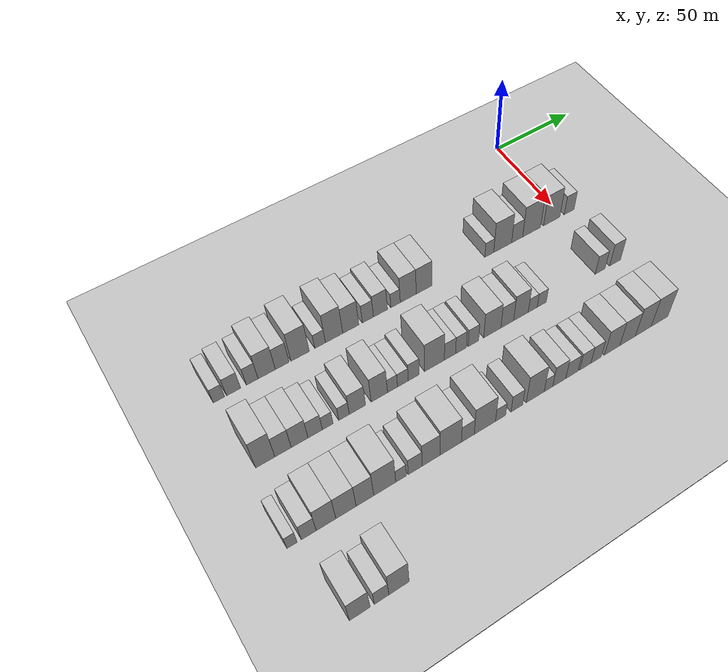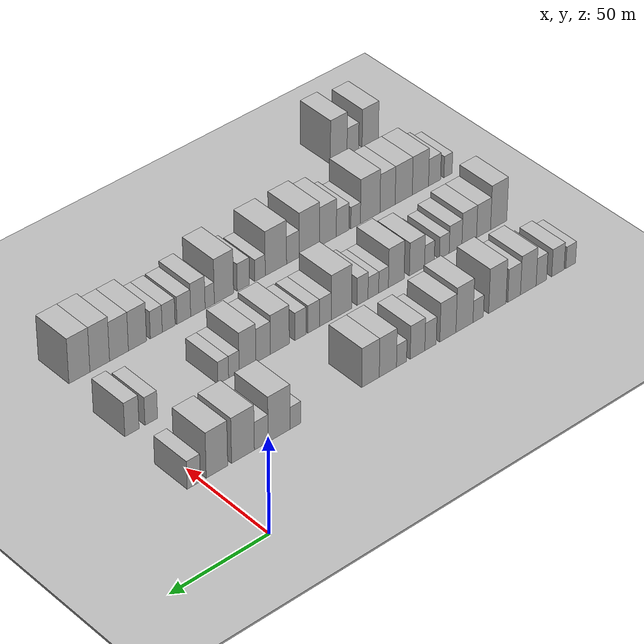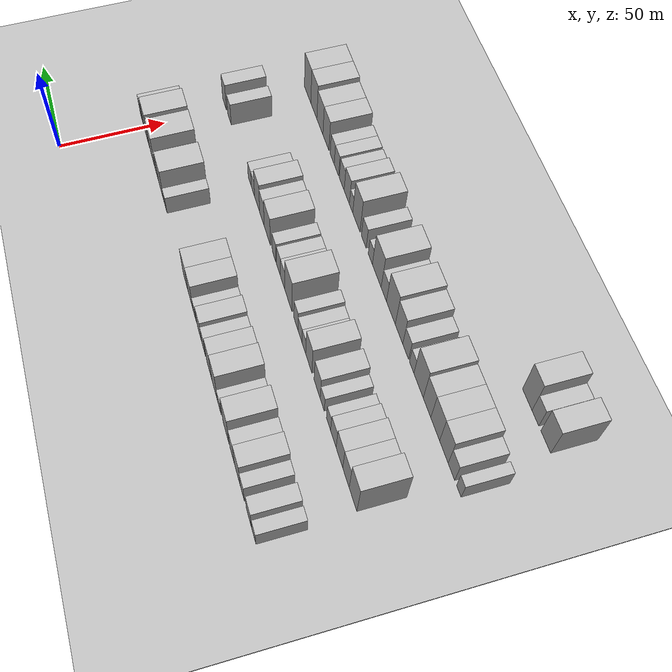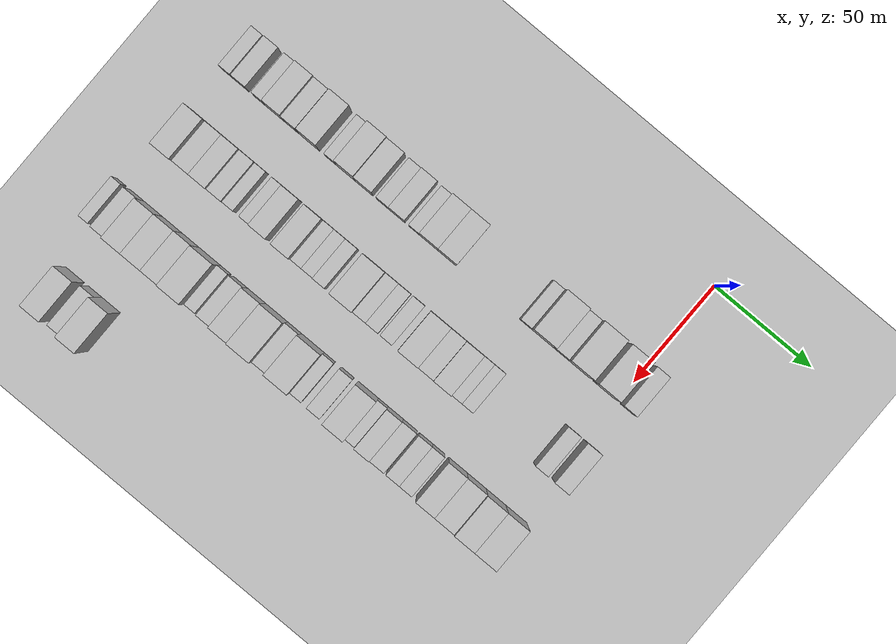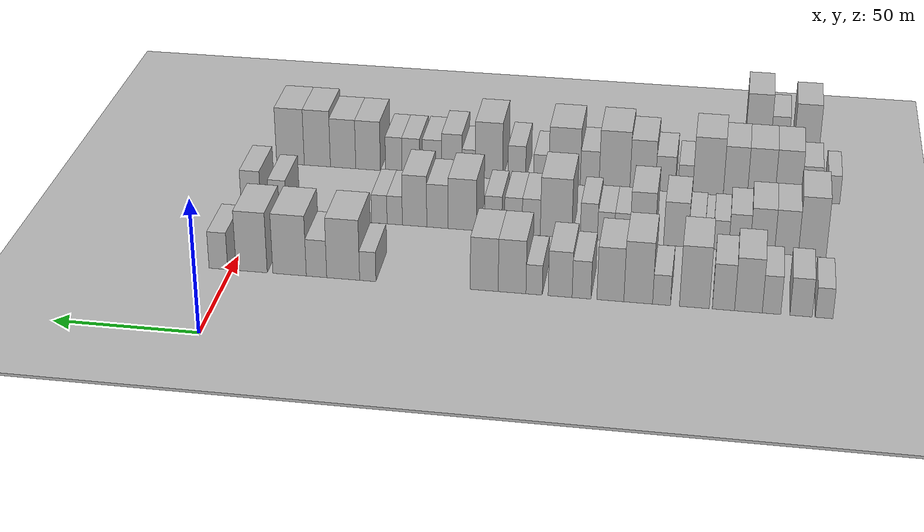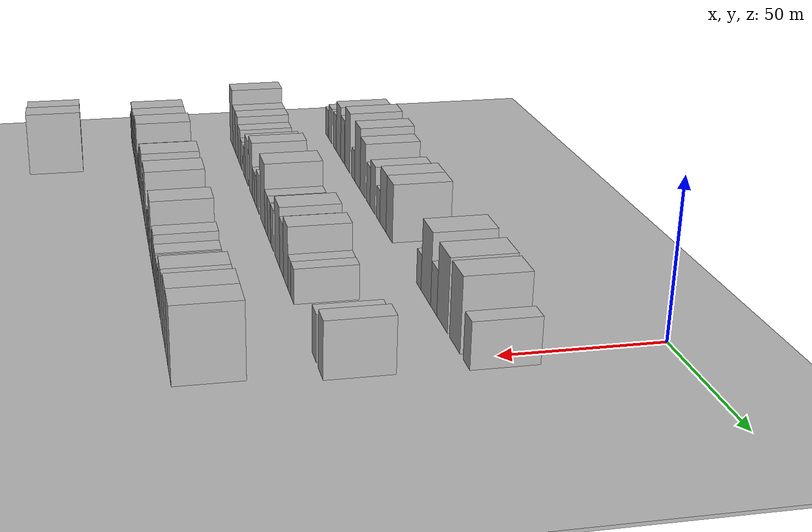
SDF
<sdf version="1.6">
 <world name="default">
  <include><name>ground_plane_1</name><uri>model://HANNAS_ground_plane</uri></include>
  <include>
   <name>ground_plane_2</name>
   <uri>model://HANNAS_ground_plane</uri>
   <pose>100 0 0  0 0 0</pose>
  </include>
  <model name="building_47">
   <static>1</static>
   <pose>50.0000 -202.3374 0 0.000000 0.000000 0.000000</pose>
   <link name="link">
    <pose>0 0 6.00 0 0 0</pose>
    <collision name="collision"><geometry><box><size>20.0000 5.7810 12.0000</size></box></geometry></collision>
    <visual name="visual">
     <cast_shadows>0</cast_shadows>
     <geometry><box><size>20.0000 5.7810 12.0000</size></box></geometry>
     <material>
      <script>
       <uri>model://HANNAS_wall/materials/scripts</uri>
       <uri>model://HANNAS_wall/materials/textures</uri>
       <name>vrc/HANNAS_wall</name>
      </script>
     </material>
    </visual>
   </link>
  </model>
  <model name="building_48">
   <static>1</static>
   <pose>50.0000 -194.7941 0 0.000000 0.000000 0.000000</pose>
   <link name="link">
    <pose>0 0 7.50 0 0 0</pose>
    <collision name="collision"><geometry><box><size>20.0000 7.3055 15.0000</size></box></geometry></collision>
    <visual name="visual">
     <cast_shadows>0</cast_shadows>
     <geometry><box><size>20.0000 7.3055 15.0000</size></box></geometry>
     <material>
      <script>
       <uri>model://HANNAS_wall/materials/scripts</uri>
       <uri>model://HANNAS_wall/materials/textures</uri>
       <name>vrc/HANNAS_wall</name>
      </script>
     </material>
    </visual>
   </link>
  </model>
  <model name="building_49">
   <static>1</static>
   <pose>50.0000 -185.0760 0 0.000000 0.000000 0.000000</pose>
   <link name="link">
    <pose>0 0 7.50 0 0 0</pose>
    <collision name="collision"><geometry><box><size>20.0000 6.1306 15.0000</size></box></geometry></collision>
    <visual name="visual">
     <cast_shadows>0</cast_shadows>
     <geometry><box><size>20.0000 6.1306 15.0000</size></box></geometry>
     <material>
      <script>
       <uri>model://HANNAS_wall/materials/scripts</uri>
       <uri>model://HANNAS_wall/materials/textures</uri>
       <name>vrc/HANNAS_wall</name>
      </script>
     </material>
    </visual>
   </link>
  </model>
  <model name="building_50">
   <static>1</static>
   <pose>50.0000 -177.4437 0 0.000000 0.000000 0.000000</pose>
   <link name="link">
    <pose>0 0 10.50 0 0 0</pose>
    <collision name="collision"><geometry><box><size>20.0000 9.1340 21.0000</size></box></geometry></collision>
    <visual name="visual">
     <cast_shadows>0</cast_shadows>
     <geometry><box><size>20.0000 9.1340 21.0000</size></box></geometry>
     <material>
      <script>
       <uri>model://HANNAS_wall/materials/scripts</uri>
       <uri>model://HANNAS_wall/materials/textures</uri>
       <name>vrc/HANNAS_wall</name>
      </script>
     </material>
    </visual>
   </link>
  </model>
  <model name="building_51">
   <static>1</static>
   <pose>50.0000 -169.1951 0 0.000000 0.000000 0.000000</pose>
   <link name="link">
    <pose>0 0 9.00 0 0 0</pose>
    <collision name="collision"><geometry><box><size>20.0000 7.3631 18.0000</size></box></geometry></collision>
    <visual name="visual">
     <cast_shadows>0</cast_shadows>
     <geometry><box><size>20.0000 7.3631 18.0000</size></box></geometry>
     <material>
      <script>
       <uri>model://HANNAS_wall/materials/scripts</uri>
       <uri>model://HANNAS_wall/materials/textures</uri>
       <name>vrc/HANNAS_wall</name>
      </script>
     </material>
    </visual>
   </link>
  </model>
  <model name="building_52">
   <static>1</static>
   <pose>50.0000 -159.5304 0 0.000000 0.000000 0.000000</pose>
   <link name="link">
    <pose>0 0 12.00 0 0 0</pose>
    <collision name="collision"><geometry><box><size>20.0000 9.9664 24.0000</size></box></geometry></collision>
    <visual name="visual">
     <cast_shadows>0</cast_shadows>
     <geometry><box><size>20.0000 9.9664 24.0000</size></box></geometry>
     <material>
      <script>
       <uri>model://HANNAS_wall/materials/scripts</uri>
       <uri>model://HANNAS_wall/materials/textures</uri>
       <name>vrc/HANNAS_wall</name>
      </script>
     </material>
    </visual>
   </link>
  </model>
  <model name="building_53">
   <static>1</static>
   <pose>50.0000 -148.5701 0 0.000000 0.000000 0.000000</pose>
   <link name="link">
    <pose>0 0 6.00 0 0 0</pose>
    <collision name="collision"><geometry><box><size>20.0000 5.9542 12.0000</size></box></geometry></collision>
    <visual name="visual">
     <cast_shadows>0</cast_shadows>
     <geometry><box><size>20.0000 5.9542 12.0000</size></box></geometry>
     <material>
      <script>
       <uri>model://HANNAS_wall/materials/scripts</uri>
       <uri>model://HANNAS_wall/materials/textures</uri>
       <name>vrc/HANNAS_wall</name>
      </script>
     </material>
    </visual>
   </link>
  </model>
  <model name="building_54">
   <static>1</static>
   <pose>50.0000 -140.7687 0 0.000000 0.000000 0.000000</pose>
   <link name="link">
    <pose>0 0 12.00 0 0 0</pose>
    <collision name="collision"><geometry><box><size>20.0000 9.6486 24.0000</size></box></geometry></collision>
    <visual name="visual">
     <cast_shadows>0</cast_shadows>
     <geometry><box><size>20.0000 9.6486 24.0000</size></box></geometry>
     <material>
      <script>
       <uri>model://HANNAS_wall/materials/scripts</uri>
       <uri>model://HANNAS_wall/materials/textures</uri>
       <name>vrc/HANNAS_wall</name>
      </script>
     </material>
    </visual>
   </link>
  </model>
  <model name="building_55">
   <static>1</static>
   <pose>50.0000 -131.4038 0 0.000000 0.000000 0.000000</pose>
   <link name="link">
    <pose>0 0 10.50 0 0 0</pose>
    <collision name="collision"><geometry><box><size>20.0000 9.0811 21.0000</size></box></geometry></collision>
    <visual name="visual">
     <cast_shadows>0</cast_shadows>
     <geometry><box><size>20.0000 9.0811 21.0000</size></box></geometry>
     <material>
      <script>
       <uri>model://HANNAS_wall/materials/scripts</uri>
       <uri>model://HANNAS_wall/materials/textures</uri>
       <name>vrc/HANNAS_wall</name>
      </script>
     </material>
    </visual>
   </link>
  </model>
  <model name="building_56">
   <static>1</static>
   <pose>50.0000 -121.6755 0 0.000000 0.000000 0.000000</pose>
   <link name="link">
    <pose>0 0 7.50 0 0 0</pose>
    <collision name="collision"><geometry><box><size>20.0000 6.3754 15.0000</size></box></geometry></collision>
    <visual name="visual">
     <cast_shadows>0</cast_shadows>
     <geometry><box><size>20.0000 6.3754 15.0000</size></box></geometry>
     <material>
      <script>
       <uri>model://HANNAS_wall/materials/scripts</uri>
       <uri>model://HANNAS_wall/materials/textures</uri>
       <name>vrc/HANNAS_wall</name>
      </script>
     </material>
    </visual>
   </link>
  </model>
  <model name="building_57">
   <static>1</static>
   <pose>50.0000 -114.4243 0 0.000000 0.000000 0.000000</pose>
   <link name="link">
    <pose>0 0 9.00 0 0 0</pose>
    <collision name="collision"><geometry><box><size>20.0000 8.1271 18.0000</size></box></geometry></collision>
    <visual name="visual">
     <cast_shadows>0</cast_shadows>
     <geometry><box><size>20.0000 8.1271 18.0000</size></box></geometry>
     <material>
      <script>
       <uri>model://HANNAS_wall/materials/scripts</uri>
       <uri>model://HANNAS_wall/materials/textures</uri>
       <name>vrc/HANNAS_wall</name>
      </script>
     </material>
    </visual>
   </link>
  </model>
  <model name="building_58">
   <static>1</static>
   <pose>50.0000 -105.5826 0 0.000000 0.000000 0.000000</pose>
   <link name="link">
    <pose>0 0 6.00 0 0 0</pose>
    <collision name="collision"><geometry><box><size>20.0000 5.5562 12.0000</size></box></geometry></collision>
    <visual name="visual">
     <cast_shadows>0</cast_shadows>
     <geometry><box><size>20.0000 5.5562 12.0000</size></box></geometry>
     <material>
      <script>
       <uri>model://HANNAS_wall/materials/scripts</uri>
       <uri>model://HANNAS_wall/materials/textures</uri>
       <name>vrc/HANNAS_wall</name>
      </script>
     </material>
    </visual>
   </link>
  </model>
  <model name="building_59">
   <static>1</static>
   <pose>50.0000 -98.0657 0 0.000000 0.000000 0.000000</pose>
   <link name="link">
    <pose>0 0 10.50 0 0 0</pose>
    <collision name="collision"><geometry><box><size>20.0000 9.4777 21.0000</size></box></geometry></collision>
    <visual name="visual">
     <cast_shadows>0</cast_shadows>
     <geometry><box><size>20.0000 9.4777 21.0000</size></box></geometry>
     <material>
      <script>
       <uri>model://HANNAS_wall/materials/scripts</uri>
       <uri>model://HANNAS_wall/materials/textures</uri>
       <name>vrc/HANNAS_wall</name>
      </script>
     </material>
    </visual>
   </link>
  </model>
  <model name="building_60">
   <static>1</static>
   <pose>50.0000 -88.5477 0 0.000000 0.000000 0.000000</pose>
   <link name="link">
    <pose>0 0 10.50 0 0 0</pose>
    <collision name="collision"><geometry><box><size>20.0000 9.5583 21.0000</size></box></geometry></collision>
    <visual name="visual">
     <cast_shadows>0</cast_shadows>
     <geometry><box><size>20.0000 9.5583 21.0000</size></box></geometry>
     <material>
      <script>
       <uri>model://HANNAS_wall/materials/scripts</uri>
       <uri>model://HANNAS_wall/materials/textures</uri>
       <name>vrc/HANNAS_wall</name>
      </script>
     </material>
    </visual>
   </link>
  </model>
  <model name="building_61">
   <static>1</static>
   <pose>50.0000 -48.2554 0 0.000000 0.000000 0.000000</pose>
   <link name="link">
    <pose>0 0 6.00 0 0 0</pose>
    <collision name="collision"><geometry><box><size>20.0000 5.6754 12.0000</size></box></geometry></collision>
    <visual name="visual">
     <cast_shadows>0</cast_shadows>
     <geometry><box><size>20.0000 5.6754 12.0000</size></box></geometry>
     <material>
      <script>
       <uri>model://HANNAS_wall/materials/scripts</uri>
       <uri>model://HANNAS_wall/materials/textures</uri>
       <name>vrc/HANNAS_wall</name>
      </script>
     </material>
    </visual>
   </link>
  </model>
  <model name="building_62">
   <static>1</static>
   <pose>50.0000 -39.6588 0 0.000000 0.000000 0.000000</pose>
   <link name="link">
    <pose>0 0 12.00 0 0 0</pose>
    <collision name="collision"><geometry><box><size>20.0000 11.5177 24.0000</size></box></geometry></collision>
    <visual name="visual">
     <cast_shadows>0</cast_shadows>
     <geometry><box><size>20.0000 11.5177 24.0000</size></box></geometry>
     <material>
      <script>
       <uri>model://HANNAS_wall/materials/scripts</uri>
       <uri>model://HANNAS_wall/materials/textures</uri>
       <name>vrc/HANNAS_wall</name>
      </script>
     </material>
    </visual>
   </link>
  </model>
  <model name="building_63">
   <static>1</static>
   <pose>50.0000 -30.3144 0 0.000000 0.000000 0.000000</pose>
   <link name="link">
    <pose>0 0 7.50 0 0 0</pose>
    <collision name="collision"><geometry><box><size>20.0000 7.1711 15.0000</size></box></geometry></collision>
    <visual name="visual">
     <cast_shadows>0</cast_shadows>
     <geometry><box><size>20.0000 7.1711 15.0000</size></box></geometry>
     <material>
      <script>
       <uri>model://HANNAS_wall/materials/scripts</uri>
       <uri>model://HANNAS_wall/materials/textures</uri>
       <name>vrc/HANNAS_wall</name>
      </script>
     </material>
    </visual>
   </link>
  </model>
  <model name="building_64">
   <static>1</static>
   <pose>50.0000 -20.8321 0 0.000000 0.000000 0.000000</pose>
   <link name="link">
    <pose>0 0 12.00 0 0 0</pose>
    <collision name="collision"><geometry><box><size>20.0000 11.7934 24.0000</size></box></geometry></collision>
    <visual name="visual">
     <cast_shadows>0</cast_shadows>
     <geometry><box><size>20.0000 11.7934 24.0000</size></box></geometry>
     <material>
      <script>
       <uri>model://HANNAS_wall/materials/scripts</uri>
       <uri>model://HANNAS_wall/materials/textures</uri>
       <name>vrc/HANNAS_wall</name>
      </script>
     </material>
    </visual>
   </link>
  </model>
  <model name="building_65">
   <static>1</static>
   <pose>50.0000 -7.4332 0 0.000000 0.000000 0.000000</pose>
   <link name="link">
    <pose>0 0 12.00 0 0 0</pose>
    <collision name="collision"><geometry><box><size>20.0000 11.0044 24.0000</size></box></geometry></collision>
    <visual name="visual">
     <cast_shadows>0</cast_shadows>
     <geometry><box><size>20.0000 11.0044 24.0000</size></box></geometry>
     <material>
      <script>
       <uri>model://HANNAS_wall/materials/scripts</uri>
       <uri>model://HANNAS_wall/materials/textures</uri>
       <name>vrc/HANNAS_wall</name>
      </script>
     </material>
    </visual>
   </link>
  </model>
  <model name="building_66">
   <static>1</static>
   <pose>50.0000 4.3997 0 0.000000 0.000000 0.000000</pose>
   <link name="link">
    <pose>0 0 7.50 0 0 0</pose>
    <collision name="collision"><geometry><box><size>20.0000 6.6614 15.0000</size></box></geometry></collision>
    <visual name="visual">
     <cast_shadows>0</cast_shadows>
     <geometry><box><size>20.0000 6.6614 15.0000</size></box></geometry>
     <material>
      <script>
       <uri>model://HANNAS_wall/materials/scripts</uri>
       <uri>model://HANNAS_wall/materials/textures</uri>
       <name>vrc/HANNAS_wall</name>
      </script>
     </material>
    </visual>
   </link>
  </model>
  <model name="building_185">
   <static>1</static>
   <pose>90.0000 -198.8361 0 0.000000 0.000000 0.000000</pose>
   <link name="link">
    <pose>0 0 12.00 0 0 0</pose>
    <collision name="collision"><geometry><box><size>20.0000 9.6117 24.0000</size></box></geometry></collision>
    <visual name="visual">
     <cast_shadows>0</cast_shadows>
     <geometry><box><size>20.0000 9.6117 24.0000</size></box></geometry>
     <material>
      <script>
       <uri>model://HANNAS_wall/materials/scripts</uri>
       <uri>model://HANNAS_wall/materials/textures</uri>
       <name>vrc/HANNAS_wall</name>
      </script>
     </material>
    </visual>
   </link>
  </model>
  <model name="building_186">
   <static>1</static>
   <pose>90.0000 -189.9027 0 0.000000 0.000000 0.000000</pose>
   <link name="link">
    <pose>0 0 9.00 0 0 0</pose>
    <collision name="collision"><geometry><box><size>20.0000 8.2553 18.0000</size></box></geometry></collision>
    <visual name="visual">
     <cast_shadows>0</cast_shadows>
     <geometry><box><size>20.0000 8.2553 18.0000</size></box></geometry>
     <material>
      <script>
       <uri>model://HANNAS_wall/materials/scripts</uri>
       <uri>model://HANNAS_wall/materials/textures</uri>
       <name>vrc/HANNAS_wall</name>
      </script>
     </material>
    </visual>
   </link>
  </model>
  <model name="building_187">
   <static>1</static>
   <pose>90.0000 -181.4926 0 0.000000 0.000000 0.000000</pose>
   <link name="link">
    <pose>0 0 9.00 0 0 0</pose>
    <collision name="collision"><geometry><box><size>20.0000 8.5650 18.0000</size></box></geometry></collision>
    <visual name="visual">
     <cast_shadows>0</cast_shadows>
     <geometry><box><size>20.0000 8.5650 18.0000</size></box></geometry>
     <material>
      <script>
       <uri>model://HANNAS_wall/materials/scripts</uri>
       <uri>model://HANNAS_wall/materials/textures</uri>
       <name>vrc/HANNAS_wall</name>
      </script>
     </material>
    </visual>
   </link>
  </model>
  <model name="building_188">
   <static>1</static>
   <pose>90.0000 -173.5061 0 0.000000 0.000000 0.000000</pose>
   <link name="link">
    <pose>0 0 7.50 0 0 0</pose>
    <collision name="collision"><geometry><box><size>20.0000 7.4079 15.0000</size></box></geometry></collision>
    <visual name="visual">
     <cast_shadows>0</cast_shadows>
     <geometry><box><size>20.0000 7.4079 15.0000</size></box></geometry>
     <material>
      <script>
       <uri>model://HANNAS_wall/materials/scripts</uri>
       <uri>model://HANNAS_wall/materials/textures</uri>
       <name>vrc/HANNAS_wall</name>
      </script>
     </material>
    </visual>
   </link>
  </model>
  <model name="building_189">
   <static>1</static>
   <pose>90.0000 -166.9955 0 0.000000 0.000000 0.000000</pose>
   <link name="link">
    <pose>0 0 6.00 0 0 0</pose>
    <collision name="collision"><geometry><box><size>20.0000 5.6134 12.0000</size></box></geometry></collision>
    <visual name="visual">
     <cast_shadows>0</cast_shadows>
     <geometry><box><size>20.0000 5.6134 12.0000</size></box></geometry>
     <material>
      <script>
       <uri>model://HANNAS_wall/materials/scripts</uri>
       <uri>model://HANNAS_wall/materials/textures</uri>
       <name>vrc/HANNAS_wall</name>
      </script>
     </material>
    </visual>
   </link>
  </model>
  <model name="building_190">
   <static>1</static>
   <pose>90.0000 -158.3928 0 0.000000 0.000000 0.000000</pose>
   <link name="link">
    <pose>0 0 6.00 0 0 0</pose>
    <collision name="collision"><geometry><box><size>20.0000 5.5920 12.0000</size></box></geometry></collision>
    <visual name="visual">
     <cast_shadows>0</cast_shadows>
     <geometry><box><size>20.0000 5.5920 12.0000</size></box></geometry>
     <material>
      <script>
       <uri>model://HANNAS_wall/materials/scripts</uri>
       <uri>model://HANNAS_wall/materials/textures</uri>
       <name>vrc/HANNAS_wall</name>
      </script>
     </material>
    </visual>
   </link>
  </model>
  <model name="building_191">
   <static>1</static>
   <pose>90.0000 -151.2549 0 0.000000 0.000000 0.000000</pose>
   <link name="link">
    <pose>0 0 9.00 0 0 0</pose>
    <collision name="collision"><geometry><box><size>20.0000 8.6836 18.0000</size></box></geometry></collision>
    <visual name="visual">
     <cast_shadows>0</cast_shadows>
     <geometry><box><size>20.0000 8.6836 18.0000</size></box></geometry>
     <material>
      <script>
       <uri>model://HANNAS_wall/materials/scripts</uri>
       <uri>model://HANNAS_wall/materials/textures</uri>
       <name>vrc/HANNAS_wall</name>
      </script>
     </material>
    </visual>
   </link>
  </model>
  <model name="building_192">
   <static>1</static>
   <pose>90.0000 -139.4484 0 0.000000 0.000000 0.000000</pose>
   <link name="link">
    <pose>0 0 10.50 0 0 0</pose>
    <collision name="collision"><geometry><box><size>20.0000 8.9294 21.0000</size></box></geometry></collision>
    <visual name="visual">
     <cast_shadows>0</cast_shadows>
     <geometry><box><size>20.0000 8.9294 21.0000</size></box></geometry>
     <material>
      <script>
       <uri>model://HANNAS_wall/materials/scripts</uri>
       <uri>model://HANNAS_wall/materials/textures</uri>
       <name>vrc/HANNAS_wall</name>
      </script>
     </material>
    </visual>
   </link>
  </model>
  <model name="building_193">
   <static>1</static>
   <pose>90.0000 -132.2316 0 0.000000 0.000000 0.000000</pose>
   <link name="link">
    <pose>0 0 6.00 0 0 0</pose>
    <collision name="collision"><geometry><box><size>20.0000 5.5043 12.0000</size></box></geometry></collision>
    <visual name="visual">
     <cast_shadows>0</cast_shadows>
     <geometry><box><size>20.0000 5.5043 12.0000</size></box></geometry>
     <material>
      <script>
       <uri>model://HANNAS_wall/materials/scripts</uri>
       <uri>model://HANNAS_wall/materials/textures</uri>
       <name>vrc/HANNAS_wall</name>
      </script>
     </material>
    </visual>
   </link>
  </model>
  <model name="building_194">
   <static>1</static>
   <pose>90.0000 -126.4811 0 0.000000 0.000000 0.000000</pose>
   <link name="link">
    <pose>0 0 6.00 0 0 0</pose>
    <collision name="collision"><geometry><box><size>20.0000 5.9968 12.0000</size></box></geometry></collision>
    <visual name="visual">
     <cast_shadows>0</cast_shadows>
     <geometry><box><size>20.0000 5.9968 12.0000</size></box></geometry>
     <material>
      <script>
       <uri>model://HANNAS_wall/materials/scripts</uri>
       <uri>model://HANNAS_wall/materials/textures</uri>
       <name>vrc/HANNAS_wall</name>
      </script>
     </material>
    </visual>
   </link>
  </model>
  <model name="building_195">
   <static>1</static>
   <pose>90.0000 -120.4056 0 0.000000 0.000000 0.000000</pose>
   <link name="link">
    <pose>0 0 7.50 0 0 0</pose>
    <collision name="collision"><geometry><box><size>20.0000 6.1540 15.0000</size></box></geometry></collision>
    <visual name="visual">
     <cast_shadows>0</cast_shadows>
     <geometry><box><size>20.0000 6.1540 15.0000</size></box></geometry>
     <material>
      <script>
       <uri>model://HANNAS_wall/materials/scripts</uri>
       <uri>model://HANNAS_wall/materials/textures</uri>
       <name>vrc/HANNAS_wall</name>
      </script>
     </material>
    </visual>
   </link>
  </model>
  <model name="building_196">
   <static>1</static>
   <pose>90.0000 -108.6854 0 0.000000 0.000000 0.000000</pose>
   <link name="link">
    <pose>0 0 12.00 0 0 0</pose>
    <collision name="collision"><geometry><box><size>20.0000 11.2864 24.0000</size></box></geometry></collision>
    <visual name="visual">
     <cast_shadows>0</cast_shadows>
     <geometry><box><size>20.0000 11.2864 24.0000</size></box></geometry>
     <material>
      <script>
       <uri>model://HANNAS_wall/materials/scripts</uri>
       <uri>model://HANNAS_wall/materials/textures</uri>
       <name>vrc/HANNAS_wall</name>
      </script>
     </material>
    </visual>
   </link>
  </model>
  <model name="building_197">
   <static>1</static>
   <pose>90.0000 -99.7617 0 0.000000 0.000000 0.000000</pose>
   <link name="link">
    <pose>0 0 7.50 0 0 0</pose>
    <collision name="collision"><geometry><box><size>20.0000 6.5609 15.0000</size></box></geometry></collision>
    <visual name="visual">
     <cast_shadows>0</cast_shadows>
     <geometry><box><size>20.0000 6.5609 15.0000</size></box></geometry>
     <material>
      <script>
       <uri>model://HANNAS_wall/materials/scripts</uri>
       <uri>model://HANNAS_wall/materials/textures</uri>
       <name>vrc/HANNAS_wall</name>
      </script>
     </material>
    </visual>
   </link>
  </model>
  <model name="building_198">
   <static>1</static>
   <pose>90.0000 -93.3326 0 0.000000 0.000000 0.000000</pose>
   <link name="link">
    <pose>0 0 7.50 0 0 0</pose>
    <collision name="collision"><geometry><box><size>20.0000 6.2973 15.0000</size></box></geometry></collision>
    <visual name="visual">
     <cast_shadows>0</cast_shadows>
     <geometry><box><size>20.0000 6.2973 15.0000</size></box></geometry>
     <material>
      <script>
       <uri>model://HANNAS_wall/materials/scripts</uri>
       <uri>model://HANNAS_wall/materials/textures</uri>
       <name>vrc/HANNAS_wall</name>
      </script>
     </material>
    </visual>
   </link>
  </model>
  <model name="building_199">
   <static>1</static>
   <pose>90.0000 -86.1024 0 0.000000 0.000000 0.000000</pose>
   <link name="link">
    <pose>0 0 7.50 0 0 0</pose>
    <collision name="collision"><geometry><box><size>20.0000 6.1631 15.0000</size></box></geometry></collision>
    <visual name="visual">
     <cast_shadows>0</cast_shadows>
     <geometry><box><size>20.0000 6.1631 15.0000</size></box></geometry>
     <material>
      <script>
       <uri>model://HANNAS_wall/materials/scripts</uri>
       <uri>model://HANNAS_wall/materials/textures</uri>
       <name>vrc/HANNAS_wall</name>
      </script>
     </material>
    </visual>
   </link>
  </model>
  <model name="building_200">
   <static>1</static>
   <pose>90.0000 -74.8741 0 0.000000 0.000000 0.000000</pose>
   <link name="link">
    <pose>0 0 10.50 0 0 0</pose>
    <collision name="collision"><geometry><box><size>20.0000 10.2935 21.0000</size></box></geometry></collision>
    <visual name="visual">
     <cast_shadows>0</cast_shadows>
     <geometry><box><size>20.0000 10.2935 21.0000</size></box></geometry>
     <material>
      <script>
       <uri>model://HANNAS_wall/materials/scripts</uri>
       <uri>model://HANNAS_wall/materials/textures</uri>
       <name>vrc/HANNAS_wall</name>
      </script>
     </material>
    </visual>
   </link>
  </model>
  <model name="building_201">
   <static>1</static>
   <pose>90.0000 -65.8512 0 0.000000 0.000000 0.000000</pose>
   <link name="link">
    <pose>0 0 9.00 0 0 0</pose>
    <collision name="collision"><geometry><box><size>20.0000 7.7523 18.0000</size></box></geometry></collision>
    <visual name="visual">
     <cast_shadows>0</cast_shadows>
     <geometry><box><size>20.0000 7.7523 18.0000</size></box></geometry>
     <material>
      <script>
       <uri>model://HANNAS_wall/materials/scripts</uri>
       <uri>model://HANNAS_wall/materials/textures</uri>
       <name>vrc/HANNAS_wall</name>
      </script>
     </material>
    </visual>
   </link>
  </model>
  <model name="building_202">
   <static>1</static>
   <pose>90.0000 -57.5063 0 0.000000 0.000000 0.000000</pose>
   <link name="link">
    <pose>0 0 10.50 0 0 0</pose>
    <collision name="collision"><geometry><box><size>20.0000 8.9376 21.0000</size></box></geometry></collision>
    <visual name="visual">
     <cast_shadows>0</cast_shadows>
     <geometry><box><size>20.0000 8.9376 21.0000</size></box></geometry>
     <material>
      <script>
       <uri>model://HANNAS_wall/materials/scripts</uri>
       <uri>model://HANNAS_wall/materials/textures</uri>
       <name>vrc/HANNAS_wall</name>
      </script>
     </material>
    </visual>
   </link>
  </model>
  <model name="building_203">
   <static>1</static>
   <pose>90.0000 -50.2398 0 0.000000 0.000000 0.000000</pose>
   <link name="link">
    <pose>0 0 6.00 0 0 0</pose>
    <collision name="collision"><geometry><box><size>20.0000 5.5954 12.0000</size></box></geometry></collision>
    <visual name="visual">
     <cast_shadows>0</cast_shadows>
     <geometry><box><size>20.0000 5.5954 12.0000</size></box></geometry>
     <material>
      <script>
       <uri>model://HANNAS_wall/materials/scripts</uri>
       <uri>model://HANNAS_wall/materials/textures</uri>
       <name>vrc/HANNAS_wall</name>
      </script>
     </material>
    </visual>
   </link>
  </model>
  <model name="building_204">
   <static>1</static>
   <pose>90.0000 -44.6029 0 0.000000 0.000000 0.000000</pose>
   <link name="link">
    <pose>0 0 6.00 0 0 0</pose>
    <collision name="collision"><geometry><box><size>20.0000 5.6784 12.0000</size></box></geometry></collision>
    <visual name="visual">
     <cast_shadows>0</cast_shadows>
     <geometry><box><size>20.0000 5.6784 12.0000</size></box></geometry>
     <material>
      <script>
       <uri>model://HANNAS_wall/materials/scripts</uri>
       <uri>model://HANNAS_wall/materials/textures</uri>
       <name>vrc/HANNAS_wall</name>
      </script>
     </material>
    </visual>
   </link>
  </model>
  <model name="building_205">
   <static>1</static>
   <pose>90.0000 -7.0333 0 0.000000 0.000000 0.000000</pose>
   <link name="link">
    <pose>0 0 7.50 0 0 0</pose>
    <collision name="collision"><geometry><box><size>20.0000 6.4869 15.0000</size></box></geometry></collision>
    <visual name="visual">
     <cast_shadows>0</cast_shadows>
     <geometry><box><size>20.0000 6.4869 15.0000</size></box></geometry>
     <material>
      <script>
       <uri>model://HANNAS_wall/materials/scripts</uri>
       <uri>model://HANNAS_wall/materials/textures</uri>
       <name>vrc/HANNAS_wall</name>
      </script>
     </material>
    </visual>
   </link>
  </model>
  <model name="building_206">
   <static>1</static>
   <pose>90.0000 2.8644 0 0.000000 0.000000 0.000000</pose>
   <link name="link">
    <pose>0 0 9.00 0 0 0</pose>
    <collision name="collision"><geometry><box><size>20.0000 7.3085 18.0000</size></box></geometry></collision>
    <visual name="visual">
     <cast_shadows>0</cast_shadows>
     <geometry><box><size>20.0000 7.3085 18.0000</size></box></geometry>
     <material>
      <script>
       <uri>model://HANNAS_wall/materials/scripts</uri>
       <uri>model://HANNAS_wall/materials/textures</uri>
       <name>vrc/HANNAS_wall</name>
      </script>
     </material>
    </visual>
   </link>
  </model>
  <model name="building_321">
   <static>1</static>
   <pose>130.0000 -206.8223 0 0.000000 0.000000 0.000000</pose>
   <link name="link">
    <pose>0 0 6.00 0 0 0</pose>
    <collision name="collision"><geometry><box><size>20.0000 4.8735 12.0000</size></box></geometry></collision>
    <visual name="visual">
     <cast_shadows>0</cast_shadows>
     <geometry><box><size>20.0000 4.8735 12.0000</size></box></geometry>
     <material>
      <script>
       <uri>model://HANNAS_wall/materials/scripts</uri>
       <uri>model://HANNAS_wall/materials/textures</uri>
       <name>vrc/HANNAS_wall</name>
      </script>
     </material>
    </visual>
   </link>
  </model>
  <model name="building_322">
   <static>1</static>
   <pose>130.0000 -198.7988 0 0.000000 0.000000 0.000000</pose>
   <link name="link">
    <pose>0 0 7.50 0 0 0</pose>
    <collision name="collision"><geometry><box><size>20.0000 7.1736 15.0000</size></box></geometry></collision>
    <visual name="visual">
     <cast_shadows>0</cast_shadows>
     <geometry><box><size>20.0000 7.1736 15.0000</size></box></geometry>
     <material>
      <script>
       <uri>model://HANNAS_wall/materials/scripts</uri>
       <uri>model://HANNAS_wall/materials/textures</uri>
       <name>vrc/HANNAS_wall</name>
      </script>
     </material>
    </visual>
   </link>
  </model>
  <model name="building_323">
   <static>1</static>
   <pose>130.0000 -190.4127 0 0.000000 0.000000 0.000000</pose>
   <link name="link">
    <pose>0 0 10.50 0 0 0</pose>
    <collision name="collision"><geometry><box><size>20.0000 9.5984 21.0000</size></box></geometry></collision>
    <visual name="visual">
     <cast_shadows>0</cast_shadows>
     <geometry><box><size>20.0000 9.5984 21.0000</size></box></geometry>
     <material>
      <script>
       <uri>model://HANNAS_wall/materials/scripts</uri>
       <uri>model://HANNAS_wall/materials/textures</uri>
       <name>vrc/HANNAS_wall</name>
      </script>
     </material>
    </visual>
   </link>
  </model>
  <model name="building_324">
   <static>1</static>
   <pose>130.0000 -180.5781 0 0.000000 0.000000 0.000000</pose>
   <link name="link">
    <pose>0 0 10.50 0 0 0</pose>
    <collision name="collision"><geometry><box><size>20.0000 10.0708 21.0000</size></box></geometry></collision>
    <visual name="visual">
     <cast_shadows>0</cast_shadows>
     <geometry><box><size>20.0000 10.0708 21.0000</size></box></geometry>
     <material>
      <script>
       <uri>model://HANNAS_wall/materials/scripts</uri>
       <uri>model://HANNAS_wall/materials/textures</uri>
       <name>vrc/HANNAS_wall</name>
      </script>
     </material>
    </visual>
   </link>
  </model>
  <model name="building_325">
   <static>1</static>
   <pose>130.0000 -171.1222 0 0.000000 0.000000 0.000000</pose>
   <link name="link">
    <pose>0 0 10.50 0 0 0</pose>
    <collision name="collision"><geometry><box><size>20.0000 8.8410 21.0000</size></box></geometry></collision>
    <visual name="visual">
     <cast_shadows>0</cast_shadows>
     <geometry><box><size>20.0000 8.8410 21.0000</size></box></geometry>
     <material>
      <script>
       <uri>model://HANNAS_wall/materials/scripts</uri>
       <uri>model://HANNAS_wall/materials/textures</uri>
       <name>vrc/HANNAS_wall</name>
      </script>
     </material>
    </visual>
   </link>
  </model>
  <model name="building_326">
   <static>1</static>
   <pose>130.0000 -161.0546 0 0.000000 0.000000 0.000000</pose>
   <link name="link">
    <pose>0 0 12.00 0 0 0</pose>
    <collision name="collision"><geometry><box><size>20.0000 11.2940 24.0000</size></box></geometry></collision>
    <visual name="visual">
     <cast_shadows>0</cast_shadows>
     <geometry><box><size>20.0000 11.2940 24.0000</size></box></geometry>
     <material>
      <script>
       <uri>model://HANNAS_wall/materials/scripts</uri>
       <uri>model://HANNAS_wall/materials/textures</uri>
       <name>vrc/HANNAS_wall</name>
      </script>
     </material>
    </visual>
   </link>
  </model>
  <model name="building_327">
   <static>1</static>
   <pose>130.0000 -152.6547 0 0.000000 0.000000 0.000000</pose>
   <link name="link">
    <pose>0 0 6.00 0 0 0</pose>
    <collision name="collision"><geometry><box><size>20.0000 5.5058 12.0000</size></box></geometry></collision>
    <visual name="visual">
     <cast_shadows>0</cast_shadows>
     <geometry><box><size>20.0000 5.5058 12.0000</size></box></geometry>
     <material>
      <script>
       <uri>model://HANNAS_wall/materials/scripts</uri>
       <uri>model://HANNAS_wall/materials/textures</uri>
       <name>vrc/HANNAS_wall</name>
      </script>
     </material>
    </visual>
   </link>
  </model>
  <model name="building_328">
   <static>1</static>
   <pose>130.0000 -145.2543 0 0.000000 0.000000 0.000000</pose>
   <link name="link">
    <pose>0 0 7.50 0 0 0</pose>
    <collision name="collision"><geometry><box><size>20.0000 7.2951 15.0000</size></box></geometry></collision>
    <visual name="visual">
     <cast_shadows>0</cast_shadows>
     <geometry><box><size>20.0000 7.2951 15.0000</size></box></geometry>
     <material>
      <script>
       <uri>model://HANNAS_wall/materials/scripts</uri>
       <uri>model://HANNAS_wall/materials/textures</uri>
       <name>vrc/HANNAS_wall</name>
      </script>
     </material>
    </visual>
   </link>
  </model>
  <model name="building_329">
   <static>1</static>
   <pose>130.0000 -136.8446 0 0.000000 0.000000 0.000000</pose>
   <link name="link">
    <pose>0 0 10.50 0 0 0</pose>
    <collision name="collision"><geometry><box><size>20.0000 9.5242 21.0000</size></box></geometry></collision>
    <visual name="visual">
     <cast_shadows>0</cast_shadows>
     <geometry><box><size>20.0000 9.5242 21.0000</size></box></geometry>
     <material>
      <script>
       <uri>model://HANNAS_wall/materials/scripts</uri>
       <uri>model://HANNAS_wall/materials/textures</uri>
       <name>vrc/HANNAS_wall</name>
      </script>
     </material>
    </visual>
   </link>
  </model>
  <model name="building_330">
   <static>1</static>
   <pose>130.0000 -126.3219 0 0.000000 0.000000 0.000000</pose>
   <link name="link">
    <pose>0 0 12.00 0 0 0</pose>
    <collision name="collision"><geometry><box><size>20.0000 11.5212 24.0000</size></box></geometry></collision>
    <visual name="visual">
     <cast_shadows>0</cast_shadows>
     <geometry><box><size>20.0000 11.5212 24.0000</size></box></geometry>
     <material>
      <script>
       <uri>model://HANNAS_wall/materials/scripts</uri>
       <uri>model://HANNAS_wall/materials/textures</uri>
       <name>vrc/HANNAS_wall</name>
      </script>
     </material>
    </visual>
   </link>
  </model>
  <model name="building_331">
   <static>1</static>
   <pose>130.0000 -117.0253 0 0.000000 0.000000 0.000000</pose>
   <link name="link">
    <pose>0 0 7.50 0 0 0</pose>
    <collision name="collision"><geometry><box><size>20.0000 7.0721 15.0000</size></box></geometry></collision>
    <visual name="visual">
     <cast_shadows>0</cast_shadows>
     <geometry><box><size>20.0000 7.0721 15.0000</size></box></geometry>
     <material>
      <script>
       <uri>model://HANNAS_wall/materials/scripts</uri>
       <uri>model://HANNAS_wall/materials/textures</uri>
       <name>vrc/HANNAS_wall</name>
      </script>
     </material>
    </visual>
   </link>
  </model>
  <model name="building_332">
   <static>1</static>
   <pose>130.0000 -107.5536 0 0.000000 0.000000 0.000000</pose>
   <link name="link">
    <pose>0 0 12.00 0 0 0</pose>
    <collision name="collision"><geometry><box><size>20.0000 11.8712 24.0000</size></box></geometry></collision>
    <visual name="visual">
     <cast_shadows>0</cast_shadows>
     <geometry><box><size>20.0000 11.8712 24.0000</size></box></geometry>
     <material>
      <script>
       <uri>model://HANNAS_wall/materials/scripts</uri>
       <uri>model://HANNAS_wall/materials/textures</uri>
       <name>vrc/HANNAS_wall</name>
      </script>
     </material>
    </visual>
   </link>
  </model>
  <model name="building_333">
   <static>1</static>
   <pose>130.0000 -98.7478 0 0.000000 0.000000 0.000000</pose>
   <link name="link">
    <pose>0 0 6.00 0 0 0</pose>
    <collision name="collision"><geometry><box><size>20.0000 5.7404 12.0000</size></box></geometry></collision>
    <visual name="visual">
     <cast_shadows>0</cast_shadows>
     <geometry><box><size>20.0000 5.7404 12.0000</size></box></geometry>
     <material>
      <script>
       <uri>model://HANNAS_wall/materials/scripts</uri>
       <uri>model://HANNAS_wall/materials/textures</uri>
       <name>vrc/HANNAS_wall</name>
      </script>
     </material>
    </visual>
   </link>
  </model>
  <model name="building_334">
   <static>1</static>
   <pose>130.0000 -89.5169 0 0.000000 0.000000 0.000000</pose>
   <link name="link">
    <pose>0 0 7.50 0 0 0</pose>
    <collision name="collision"><geometry><box><size>20.0000 6.7214 15.0000</size></box></geometry></collision>
    <visual name="visual">
     <cast_shadows>0</cast_shadows>
     <geometry><box><size>20.0000 6.7214 15.0000</size></box></geometry>
     <material>
      <script>
       <uri>model://HANNAS_wall/materials/scripts</uri>
       <uri>model://HANNAS_wall/materials/textures</uri>
       <name>vrc/HANNAS_wall</name>
      </script>
     </material>
    </visual>
   </link>
  </model>
  <model name="building_335">
   <static>1</static>
   <pose>130.0000 -78.9233 0 0.000000 0.000000 0.000000</pose>
   <link name="link">
    <pose>0 0 12.00 0 0 0</pose>
    <collision name="collision"><geometry><box><size>20.0000 10.4658 24.0000</size></box></geometry></collision>
    <visual name="visual">
     <cast_shadows>0</cast_shadows>
     <geometry><box><size>20.0000 10.4658 24.0000</size></box></geometry>
     <material>
      <script>
       <uri>model://HANNAS_wall/materials/scripts</uri>
       <uri>model://HANNAS_wall/materials/textures</uri>
       <name>vrc/HANNAS_wall</name>
      </script>
     </material>
    </visual>
   </link>
  </model>
  <model name="building_336">
   <static>1</static>
   <pose>130.0000 -71.1840 0 0.000000 0.000000 0.000000</pose>
   <link name="link">
    <pose>0 0 6.00 0 0 0</pose>
    <collision name="collision"><geometry><box><size>20.0000 5.0127 12.0000</size></box></geometry></collision>
    <visual name="visual">
     <cast_shadows>0</cast_shadows>
     <geometry><box><size>20.0000 5.0127 12.0000</size></box></geometry>
     <material>
      <script>
       <uri>model://HANNAS_wall/materials/scripts</uri>
       <uri>model://HANNAS_wall/materials/textures</uri>
       <name>vrc/HANNAS_wall</name>
      </script>
     </material>
    </visual>
   </link>
  </model>
  <model name="building_337">
   <static>1</static>
   <pose>130.0000 -64.7865 0 0.000000 0.000000 0.000000</pose>
   <link name="link">
    <pose>0 0 9.00 0 0 0</pose>
    <collision name="collision"><geometry><box><size>20.0000 7.7822 18.0000</size></box></geometry></collision>
    <visual name="visual">
     <cast_shadows>0</cast_shadows>
     <geometry><box><size>20.0000 7.7822 18.0000</size></box></geometry>
     <material>
      <script>
       <uri>model://HANNAS_wall/materials/scripts</uri>
       <uri>model://HANNAS_wall/materials/textures</uri>
       <name>vrc/HANNAS_wall</name>
      </script>
     </material>
    </visual>
   </link>
  </model>
  <model name="building_338">
   <static>1</static>
   <pose>130.0000 -57.2152 0 0.000000 0.000000 0.000000</pose>
   <link name="link">
    <pose>0 0 7.50 0 0 0</pose>
    <collision name="collision"><geometry><box><size>20.0000 7.3605 15.0000</size></box></geometry></collision>
    <visual name="visual">
     <cast_shadows>0</cast_shadows>
     <geometry><box><size>20.0000 7.3605 15.0000</size></box></geometry>
     <material>
      <script>
       <uri>model://HANNAS_wall/materials/scripts</uri>
       <uri>model://HANNAS_wall/materials/textures</uri>
       <name>vrc/HANNAS_wall</name>
      </script>
     </material>
    </visual>
   </link>
  </model>
  <model name="building_339">
   <static>1</static>
   <pose>130.0000 -49.1105 0 0.000000 0.000000 0.000000</pose>
   <link name="link">
    <pose>0 0 7.50 0 0 0</pose>
    <collision name="collision"><geometry><box><size>20.0000 6.8489 15.0000</size></box></geometry></collision>
    <visual name="visual">
     <cast_shadows>0</cast_shadows>
     <geometry><box><size>20.0000 6.8489 15.0000</size></box></geometry>
     <material>
      <script>
       <uri>model://HANNAS_wall/materials/scripts</uri>
       <uri>model://HANNAS_wall/materials/textures</uri>
       <name>vrc/HANNAS_wall</name>
      </script>
     </material>
    </visual>
   </link>
  </model>
  <model name="building_340">
   <static>1</static>
   <pose>130.0000 -42.5082 0 0.000000 0.000000 0.000000</pose>
   <link name="link">
    <pose>0 0 7.50 0 0 0</pose>
    <collision name="collision"><geometry><box><size>20.0000 6.3557 15.0000</size></box></geometry></collision>
    <visual name="visual">
     <cast_shadows>0</cast_shadows>
     <geometry><box><size>20.0000 6.3557 15.0000</size></box></geometry>
     <material>
      <script>
       <uri>model://HANNAS_wall/materials/scripts</uri>
       <uri>model://HANNAS_wall/materials/textures</uri>
       <name>vrc/HANNAS_wall</name>
      </script>
     </material>
    </visual>
   </link>
  </model>
  <model name="building_341">
   <static>1</static>
   <pose>130.0000 -32.5597 0 0.000000 0.000000 0.000000</pose>
   <link name="link">
    <pose>0 0 10.50 0 0 0</pose>
    <collision name="collision"><geometry><box><size>20.0000 9.5412 21.0000</size></box></geometry></collision>
    <visual name="visual">
     <cast_shadows>0</cast_shadows>
     <geometry><box><size>20.0000 9.5412 21.0000</size></box></geometry>
     <material>
      <script>
       <uri>model://HANNAS_wall/materials/scripts</uri>
       <uri>model://HANNAS_wall/materials/textures</uri>
       <name>vrc/HANNAS_wall</name>
      </script>
     </material>
    </visual>
   </link>
  </model>
  <model name="building_342">
   <static>1</static>
   <pose>130.0000 -22.8524 0 0.000000 0.000000 0.000000</pose>
   <link name="link">
    <pose>0 0 10.50 0 0 0</pose>
    <collision name="collision"><geometry><box><size>20.0000 9.8734 21.0000</size></box></geometry></collision>
    <visual name="visual">
     <cast_shadows>0</cast_shadows>
     <geometry><box><size>20.0000 9.8734 21.0000</size></box></geometry>
     <material>
      <script>
       <uri>model://HANNAS_wall/materials/scripts</uri>
       <uri>model://HANNAS_wall/materials/textures</uri>
       <name>vrc/HANNAS_wall</name>
      </script>
     </material>
    </visual>
   </link>
  </model>
  <model name="building_343">
   <static>1</static>
   <pose>130.0000 -12.8239 0 0.000000 0.000000 0.000000</pose>
   <link name="link">
    <pose>0 0 12.00 0 0 0</pose>
    <collision name="collision"><geometry><box><size>20.0000 10.1836 24.0000</size></box></geometry></collision>
    <visual name="visual">
     <cast_shadows>0</cast_shadows>
     <geometry><box><size>20.0000 10.1836 24.0000</size></box></geometry>
     <material>
      <script>
       <uri>model://HANNAS_wall/materials/scripts</uri>
       <uri>model://HANNAS_wall/materials/textures</uri>
       <name>vrc/HANNAS_wall</name>
      </script>
     </material>
    </visual>
   </link>
  </model>
  <model name="building_344">
   <static>1</static>
   <pose>130.0000 -2.3081 0 0.000000 0.000000 0.000000</pose>
   <link name="link">
    <pose>0 0 12.00 0 0 0</pose>
    <collision name="collision"><geometry><box><size>20.0000 10.8480 24.0000</size></box></geometry></collision>
    <visual name="visual">
     <cast_shadows>0</cast_shadows>
     <geometry><box><size>20.0000 10.8480 24.0000</size></box></geometry>
     <material>
      <script>
       <uri>model://HANNAS_wall/materials/scripts</uri>
       <uri>model://HANNAS_wall/materials/textures</uri>
       <name>vrc/HANNAS_wall</name>
      </script>
     </material>
    </visual>
   </link>
  </model>
  <model name="building_459">
   <static>1</static>
   <pose>170.0000 -197.4435 0 0.000000 0.000000 0.000000</pose>
   <link name="link">
    <pose>0 0 10.50 0 0 0</pose>
    <collision name="collision"><geometry><box><size>20.0000 9.7113 21.0000</size></box></geometry></collision>
    <visual name="visual">
     <cast_shadows>0</cast_shadows>
     <geometry><box><size>20.0000 9.7113 21.0000</size></box></geometry>
     <material>
      <script>
       <uri>model://HANNAS_wall/materials/scripts</uri>
       <uri>model://HANNAS_wall/materials/textures</uri>
       <name>vrc/HANNAS_wall</name>
      </script>
     </material>
    </visual>
   </link>
  </model>
  <model name="building_460">
   <static>1</static>
   <pose>170.0000 -187.1342 0 0.000000 0.000000 0.000000</pose>
   <link name="link">
    <pose>0 0 7.50 0 0 0</pose>
    <collision name="collision"><geometry><box><size>20.0000 6.9074 15.0000</size></box></geometry></collision>
    <visual name="visual">
     <cast_shadows>0</cast_shadows>
     <geometry><box><size>20.0000 6.9074 15.0000</size></box></geometry>
     <material>
      <script>
       <uri>model://HANNAS_wall/materials/scripts</uri>
       <uri>model://HANNAS_wall/materials/textures</uri>
       <name>vrc/HANNAS_wall</name>
      </script>
     </material>
    </visual>
   </link>
  </model>
  <model name="building_461">
   <static>1</static>
   <pose>170.0000 -178.7904 0 0.000000 0.000000 0.000000</pose>
   <link name="link">
    <pose>0 0 12.00 0 0 0</pose>
    <collision name="collision"><geometry><box><size>20.0000 9.7803 24.0000</size></box></geometry></collision>
    <visual name="visual">
     <cast_shadows>0</cast_shadows>
     <geometry><box><size>20.0000 9.7803 24.0000</size></box></geometry>
     <material>
      <script>
       <uri>model://HANNAS_wall/materials/scripts</uri>
       <uri>model://HANNAS_wall/materials/textures</uri>
       <name>vrc/HANNAS_wall</name>
      </script>
     </material>
    </visual>
   </link>
  </model>
 </world>
</sdf>
